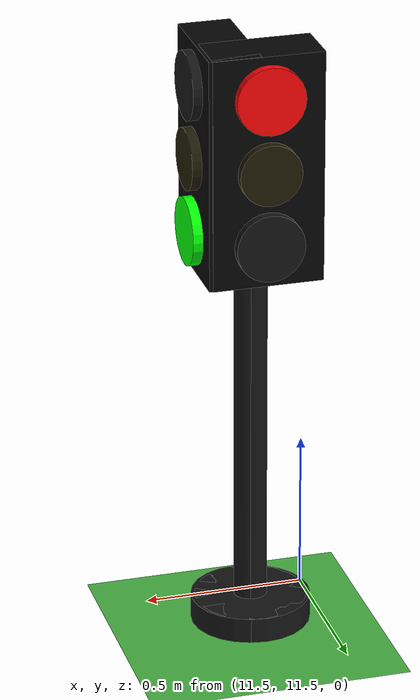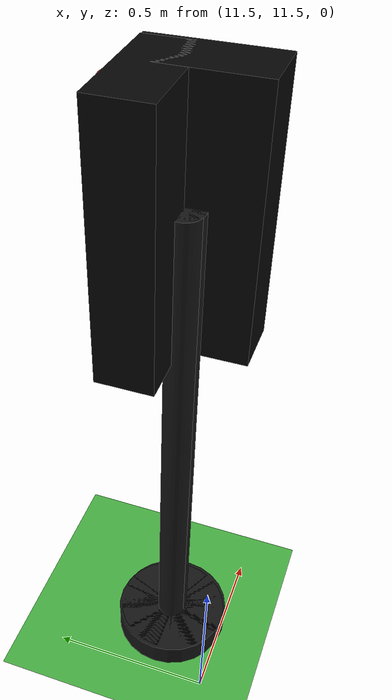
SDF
<sdf version="1.10">
 <world name="city_second">
  <model name="ground_plane">
   <static>true</static>
   <link name="link">
    <collision name="collision">
     <geometry><plane><normal>0 0 1</normal><size>300 300</size></plane></geometry>
    </collision>
    <visual name="visual">
     <geometry><plane><normal>0 0 1</normal><size>300 300</size></plane></geometry>
     <material>
      <ambient>0.280000001 0.689999998 0.25999999 1</ambient>
      <diffuse>0.280000001 0.689999998 0.25999999 1</diffuse>
      <specular>0.0299999993 0.0299999993 0.0299999993 1</specular>
     </material>
    </visual>
    <inertial>
     <mass>1</mass>
     <inertia><ixx>1</ixx><ixy>0</ixy><ixz>0</ixz><iyy>1</iyy><iyz>0</iyz><izz>1</izz></inertia>
    </inertial>
   </link>
  </model>
  <model name="simple_traffic_light_red_north_2">
   <static>true</static>
   <pose>11.708740095335536 11.674688214312628 0 0 0 0</pose>
   <link name="base">
    <pose>0 0 0.040000000000000001 0 0 0</pose>
    <collision name="collision">
     <geometry>
      <cylinder><radius>0.17999999999999999</radius><length>0.080000000000000002</length></cylinder>
     </geometry>
    </collision>
    <visual name="visual">
     <geometry>
      <cylinder><radius>0.17999999999999999</radius><length>0.080000000000000002</length></cylinder>
     </geometry>
     <material>
      <ambient>0.0799999982 0.0799999982 0.0799999982 1</ambient>
      <diffuse>0.0799999982 0.0799999982 0.0799999982 1</diffuse>
      <specular>0.150000006 0.150000006 0.150000006 1</specular>
      <emissive>0 0 0 1</emissive>
     </material>
    </visual>
    <inertial>
     <mass>1</mass>
     <inertia><ixx>1</ixx><ixy>0</ixy><ixz>0</ixz><iyy>1</iyy><iyz>0</iyz><izz>1</izz></inertia>
    </inertial>
   </link>
   <link name="pole">
    <pose>0 0 0.80000000000000004 0 0 0</pose>
    <collision name="collision">
     <geometry>
      <cylinder><radius>0.044999999999999998</radius><length>1.6000000000000001</length></cylinder>
     </geometry>
    </collision>
    <visual name="visual">
     <geometry>
      <cylinder><radius>0.044999999999999998</radius><length>1.6000000000000001</length></cylinder>
     </geometry>
     <material>
      <ambient>0.0799999982 0.0799999982 0.0799999982 1</ambient>
      <diffuse>0.0799999982 0.0799999982 0.0799999982 1</diffuse>
      <specular>0.150000006 0.150000006 0.150000006 1</specular>
      <emissive>0 0 0 1</emissive>
     </material>
    </visual>
    <inertial>
     <mass>1</mass>
     <inertia><ixx>1</ixx><ixy>0</ixy><ixz>0</ixz><iyy>1</iyy><iyz>0</iyz><izz>1</izz></inertia>
    </inertial>
   </link>
   <link name="signal_box">
    <pose>0 0.090000000000003411 1.55 0 0 0</pose>
    <collision name="collision">
     <geometry><box><size>0.34000000000000002 0.16 0.71999999999999997</size></box></geometry>
    </collision>
    <visual name="visual">
     <geometry><box><size>0.34000000000000002 0.16 0.71999999999999997</size></box></geometry>
     <material>
      <ambient>0.0199999996 0.0199999996 0.0199999996 1</ambient>
      <diffuse>0.0199999996 0.0199999996 0.0199999996 1</diffuse>
      <specular>0.150000006 0.150000006 0.150000006 1</specular>
      <emissive>0 0 0 1</emissive>
     </material>
    </visual>
    <inertial>
     <mass>1</mass>
     <inertia><ixx>1</ixx><ixy>0</ixy><ixz>0</ixz><iyy>1</iyy><iyz>0</iyz><izz>1</izz></inertia>
    </inertial>
   </link>
   <link name="red_lens">
    <pose>0 0.18099999999999739 1.78 1.5707963268000003 0 0</pose>
    <collision name="collision">
     <geometry><cylinder><radius>0.105</radius><length>0.035000000000000003</length></cylinder></geometry>
    </collision>
    <visual name="visual">
     <geometry><cylinder><radius>0.105</radius><length>0.035000000000000003</length></cylinder></geometry>
     <material>
      <ambient>1 0.0199999996 0.0199999996 1</ambient>
      <diffuse>1 0.0199999996 0.0199999996 1</diffuse>
      <specular>0.150000006 0.150000006 0.150000006 1</specular>
      <emissive>1 0.0199999996 0.0199999996 1</emissive>
     </material>
    </visual>
    <inertial>
     <mass>1</mass>
     <inertia><ixx>1</ixx><ixy>0</ixy><ixz>0</ixz><iyy>1</iyy><iyz>0</iyz><izz>1</izz></inertia>
    </inertial>
   </link>
   <link name="yellow_lens">
    <pose>0 0.18200000000000216 1.55 1.5707963268000003 0 0</pose>
    <collision name="collision">
     <geometry>
      <cylinder><radius>0.095000000000000001</radius><length>0.035000000000000003</length></cylinder>
     </geometry>
    </collision>
    <visual name="visual">
     <geometry>
      <cylinder><radius>0.095000000000000001</radius><length>0.035000000000000003</length></cylinder>
     </geometry>
     <material>
      <ambient>0.119999997 0.100000001 0.0199999996 1</ambient>
      <diffuse>0.119999997 0.100000001 0.0199999996 1</diffuse>
      <specular>0.150000006 0.150000006 0.150000006 1</specular>
      <emissive>0 0 0 1</emissive>
     </material>
    </visual>
    <inertial>
     <mass>1</mass>
     <inertia><ixx>1</ixx><ixy>0</ixy><ixz>0</ixz><iyy>1</iyy><iyz>0</iyz><izz>1</izz></inertia>
    </inertial>
   </link>
   <link name="green_lens">
    <pose>0 0.18299999999999983 1.3200000000000001 1.5707963268000003 0 0</pose>
    <collision name="collision">
     <geometry><cylinder><radius>0.105</radius><length>0.035000000000000003</length></cylinder></geometry>
    </collision>
    <visual name="visual">
     <geometry><cylinder><radius>0.105</radius><length>0.035000000000000003</length></cylinder></geometry>
     <material>
      <ambient>0.0799999982 0.0799999982 0.0799999982 1</ambient>
      <diffuse>0.0799999982 0.0799999982 0.0799999982 1</diffuse>
      <specular>0.150000006 0.150000006 0.150000006 1</specular>
      <emissive>0 0 0 1</emissive>
     </material>
    </visual>
    <inertial>
     <mass>1</mass>
     <inertia><ixx>1</ixx><ixy>0</ixy><ixz>0</ixz><iyy>1</iyy><iyz>0</iyz><izz>1</izz></inertia>
    </inertial>
   </link>
  </model>
  <model name="simple_traffic_light_green_east_1_2">
   <static>true</static>
   <pose>11.719691132736202 11.671792408999575 -3.4694469519536142e-17 0 0 -1.5707999672671742</pose>
   <link name="base">
    <pose>0 0 0.040000000000000001 0 0 0</pose>
    <collision name="collision">
     <geometry>
      <cylinder><radius>0.17999999999999999</radius><length>0.080000000000000002</length></cylinder>
     </geometry>
    </collision>
    <visual name="visual">
     <geometry>
      <cylinder><radius>0.17999999999999999</radius><length>0.080000000000000002</length></cylinder>
     </geometry>
     <material>
      <ambient>0.0799999982 0.0799999982 0.0799999982 1</ambient>
      <diffuse>0.0799999982 0.0799999982 0.0799999982 1</diffuse>
      <specular>0.150000006 0.150000006 0.150000006 1</specular>
      <emissive>0 0 0 1</emissive>
     </material>
    </visual>
    <inertial>
     <mass>1</mass>
     <inertia><ixx>1</ixx><ixy>0</ixy><ixz>0</ixz><iyy>1</iyy><iyz>0</iyz><izz>1</izz></inertia>
    </inertial>
   </link>
   <link name="pole">
    <pose>-1.9539925233402755e-14 7.1054273576010019e-15 0.80000000000000004 0 0 -6.6613381477509392e-16</pose>
    <collision name="collision">
     <geometry>
      <cylinder><radius>0.044999999999999998</radius><length>1.6000000000000001</length></cylinder>
     </geometry>
    </collision>
    <visual name="visual">
     <geometry>
      <cylinder><radius>0.044999999999999998</radius><length>1.6000000000000001</length></cylinder>
     </geometry>
     <material>
      <ambient>0.0799999982 0.0799999982 0.0799999982 1</ambient>
      <diffuse>0.0799999982 0.0799999982 0.0799999982 1</diffuse>
      <specular>0.150000006 0.150000006 0.150000006 1</specular>
      <emissive>0 0 0 1</emissive>
     </material>
    </visual>
    <inertial>
     <mass>1</mass>
     <inertia><ixx>1</ixx><ixy>0</ixy><ixz>0</ixz><iyy>1</iyy><iyz>0</iyz><izz>1</izz></inertia>
    </inertial>
   </link>
   <link name="signal_box">
    <pose>-1.4210854715202004e-14 0.090000000000001634 1.5500000000000003 0 0 -6.6613381477509392e-16</pose>
    <collision name="collision">
     <geometry><box><size>0.34000000000000002 0.16 0.71999999999999997</size></box></geometry>
    </collision>
    <visual name="visual">
     <geometry><box><size>0.34000000000000002 0.16 0.71999999999999997</size></box></geometry>
     <material>
      <ambient>0.0199999996 0.0199999996 0.0199999996 1</ambient>
      <diffuse>0.0199999996 0.0199999996 0.0199999996 1</diffuse>
      <specular>0.150000006 0.150000006 0.150000006 1</specular>
      <emissive>0 0 0 1</emissive>
     </material>
    </visual>
    <inertial>
     <mass>1</mass>
     <inertia><ixx>1</ixx><ixy>0</ixy><ixz>0</ixz><iyy>1</iyy><iyz>0</iyz><izz>1</izz></inertia>
    </inertial>
   </link>
   <link name="red_lens">
    <pose>-2.3092638912203256e-14 0.18099999999999739 1.7800000000000002 1.5707963268 -7.8504622948811713e-17 5.7308374741955815e-15</pose>
    <collision name="collision">
     <geometry><cylinder><radius>0.105</radius><length>0.035000000000000003</length></cylinder></geometry>
    </collision>
    <visual name="visual">
     <geometry><cylinder><radius>0.105</radius><length>0.035000000000000003</length></cylinder></geometry>
     <material>
      <ambient>0.0799999982 0.0799999982 0.0799999982 1</ambient>
      <diffuse>0.0799999982 0.0799999982 0.0799999982 1</diffuse>
      <specular>0.150000006 0.150000006 0.150000006 1</specular>
      <emissive>0 0 0 1</emissive>
     </material>
    </visual>
    <inertial>
     <mass>1</mass>
     <inertia><ixx>1</ixx><ixy>0</ixy><ixz>0</ixz><iyy>1</iyy><iyz>0</iyz><izz>1</izz></inertia>
    </inertial>
   </link>
   <link name="yellow_lens">
    <pose>-1.7763568394002505e-14 0.18199999999999505 1.5500000000000003 1.5707963268 -7.8504622948811713e-17 5.7308374741955815e-15</pose>
    <collision name="collision">
     <geometry>
      <cylinder><radius>0.095000000000000001</radius><length>0.035000000000000003</length></cylinder>
     </geometry>
    </collision>
    <visual name="visual">
     <geometry>
      <cylinder><radius>0.095000000000000001</radius><length>0.035000000000000003</length></cylinder>
     </geometry>
     <material>
      <ambient>0.119999997 0.100000001 0.0199999996 1</ambient>
      <diffuse>0.119999997 0.100000001 0.0199999996 1</diffuse>
      <specular>0.150000006 0.150000006 0.150000006 1</specular>
      <emissive>0 0 0 1</emissive>
     </material>
    </visual>
    <inertial>
     <mass>1</mass>
     <inertia><ixx>1</ixx><ixy>0</ixy><ixz>0</ixz><iyy>1</iyy><iyz>0</iyz><izz>1</izz></inertia>
    </inertial>
   </link>
   <link name="green_lens">
    <pose>-1.0658141036401503e-14 0.18299999999999272 1.3200000000000003 1.5707963268 -7.8504622948811713e-17 5.7308374741955815e-15</pose>
    <collision name="collision">
     <geometry><cylinder><radius>0.105</radius><length>0.035000000000000003</length></cylinder></geometry>
    </collision>
    <visual name="visual">
     <geometry><cylinder><radius>0.105</radius><length>0.035000000000000003</length></cylinder></geometry>
     <material>
      <ambient>0.0199999996 1 0.0199999996 1</ambient>
      <diffuse>0.0199999996 1 0.0199999996 1</diffuse>
      <specular>0.150000006 0.150000006 0.150000006 1</specular>
      <emissive>0.0199999996 1 0.0199999996 1</emissive>
     </material>
    </visual>
    <inertial>
     <mass>1</mass>
     <inertia><ixx>1</ixx><ixy>0</ixy><ixz>0</ixz><iyy>1</iyy><iyz>0</iyz><izz>1</izz></inertia>
    </inertial>
   </link>
  </model>
 </world>
</sdf>
